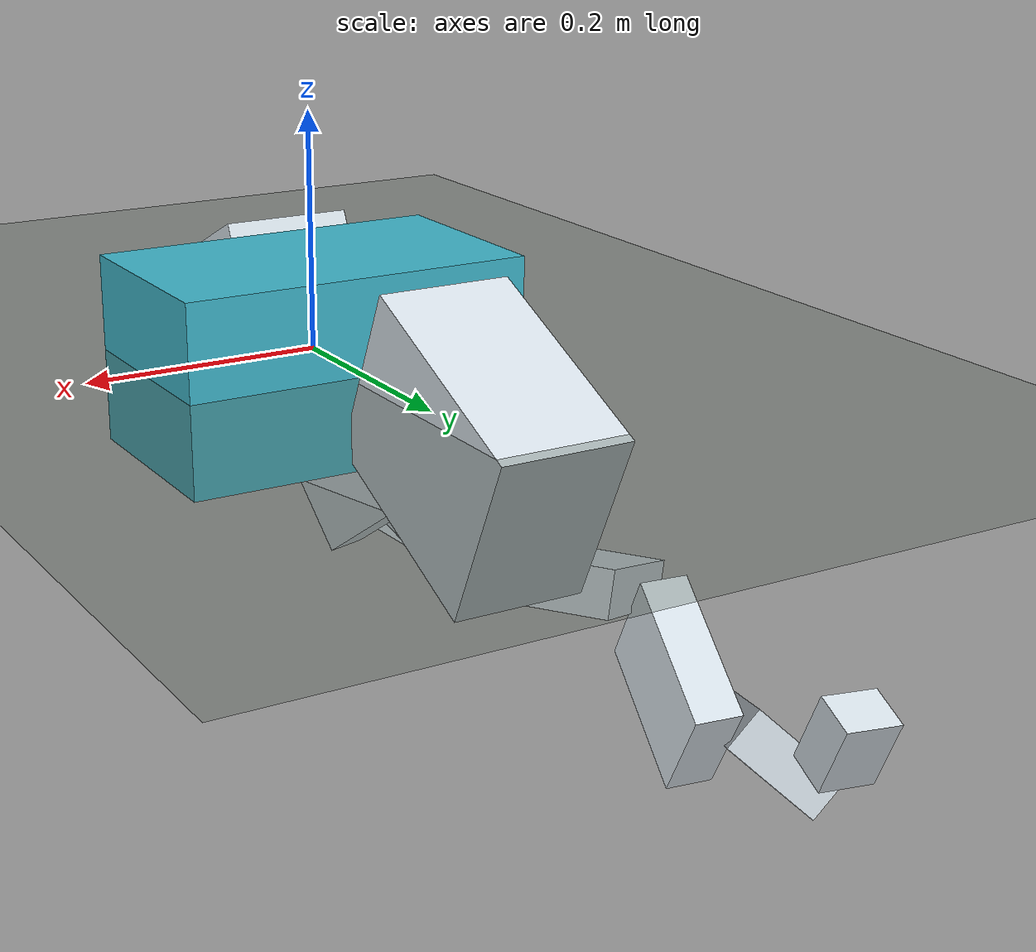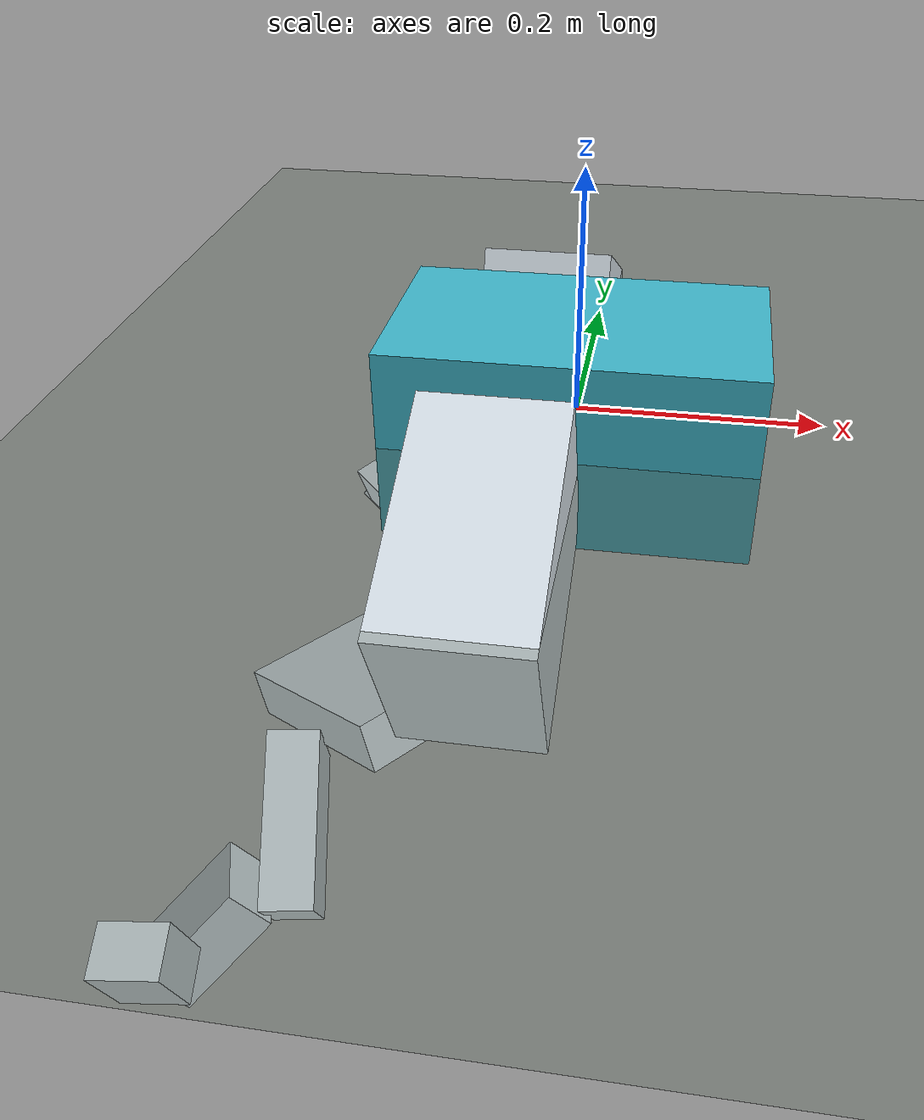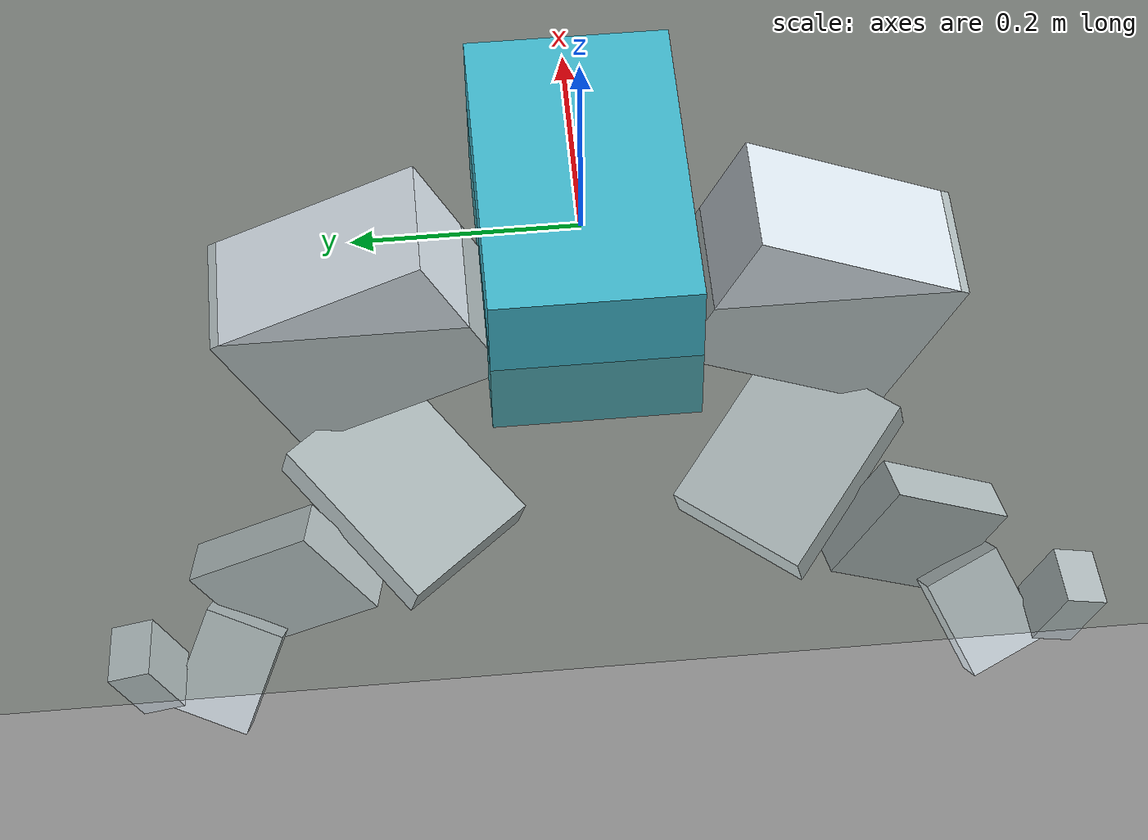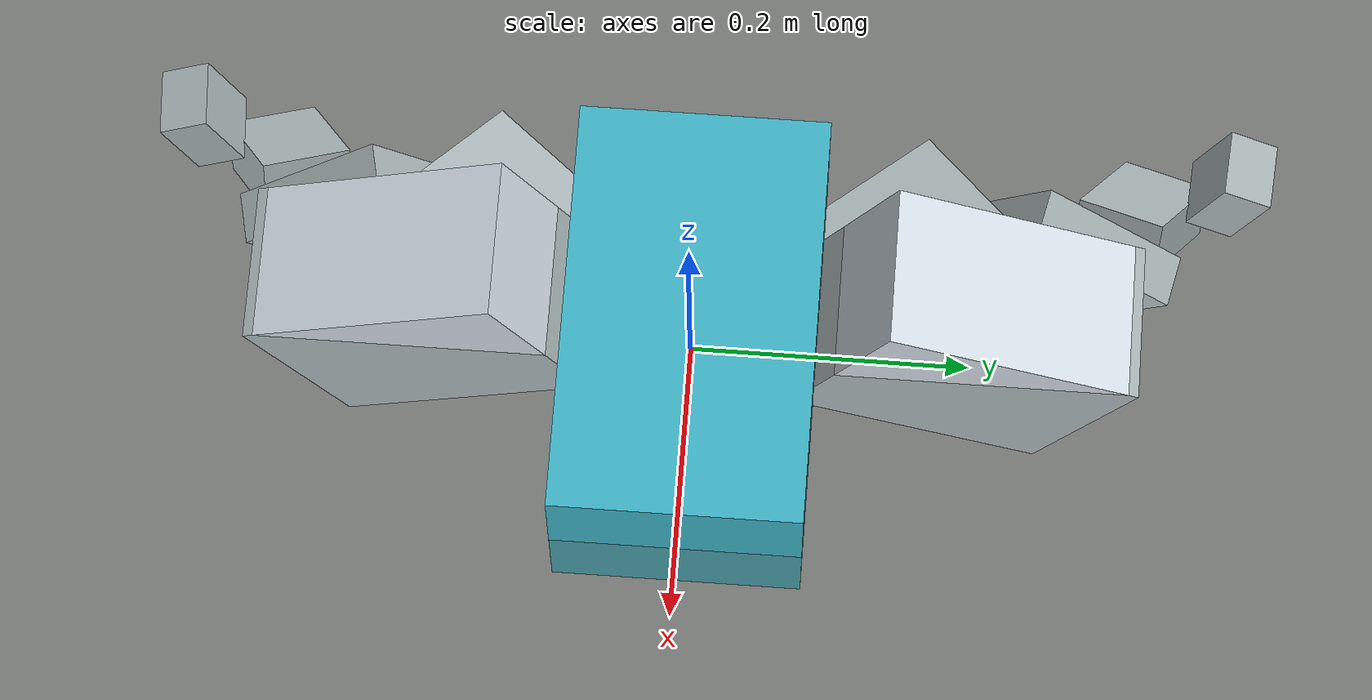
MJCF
<mujoco model="criatura">
  <compiler angle="degree" autolimits="true"/>
  <option timestep="0.002083" gravity="0 0 -9.81" integrator="implicitfast"/>
  <default>
    <geom type="box" density="300.0" rgba="0.85 0.89 0.92 1"/>
    <joint type="hinge"/>
    <motor ctrlrange="-1 1"/>
  </default>
  <worldbody>
    <geom name="suelo" type="plane" size="0 0 1" friction="1 0.005 0.0001" rgba="0.3 0.35 0.3 1"/>
    <body name="p0_n0" pos="0.00000 0.00000 0.00000" quat="1.000000 0.000000 0.000000 0.000000">
      <freejoint name="raiz"/>
      <geom name="g_p0_n0" size="0.15000 0.09000 0.08000" rgba="0.25 0.72 0.8 1"/>
      <body name="p1_n1" pos="-0.04500 -0.19876 -0.03471" quat="0.596368 -0.379928 0.596368 -0.379928">
        <joint name="p1_n1_j0" axis="0.0000 -1.0000 0.0000" pos="-0.12000 0 0" range="-48.59 48.59" damping="0.2739"/>
        <joint name="p1_n1_j1" axis="0.0000 0.0000 1.0000" pos="-0.12000 0 0" range="-48.59 48.59" damping="0.2739"/>
        <geom name="g_p1_n1" size="0.10000 0.08000 0.05706"/>
        <body name="p2_n2" pos="0.03320 0.13730 -0.09420" quat="-0.069109 -0.532061 -0.590361 0.603000">
          <joint name="p2_n2_j0" axis="0.0000 -1.0000 0.0000" pos="-0.10517 0 0" range="-47.06 47.06" damping="0.0778"/>
          <joint name="p2_n2_j1" axis="0.0000 0.0000 1.0000" pos="-0.10517 0 0" range="-47.06 47.06" damping="0.0778"/>
          <geom name="g_p2_n2" size="0.08517 0.06481 0.02000"/>
          <body name="p3_n3" pos="-0.01751 0.11147 -0.06702" quat="-0.069109 -0.532061 -0.590361 0.603000">
            <joint name="p3_n3_j0" axis="0.0000 -1.0000 0.0000" pos="-0.08563 0 0" range="-58.03 58.03" damping="0.0630"/>
            <joint name="p3_n3_j1" axis="0.0000 0.0000 1.0000" pos="-0.08563 0 0" range="-58.03 58.03" damping="0.0630"/>
            <geom name="g_p3_n3" size="0.06563 0.05250 0.02000"/>
            <body name="p4_n4" pos="0.06883 0.02216 -0.06476" quat="0.879286 -0.185934 0.318321 0.301590">
              <joint name="p4_n4_j0" axis="0.0000 1.0000 0.0000" pos="-0.06661 0 0" range="-47.06 47.06" damping="0.0426"/>
              <joint name="p4_n4_j1" axis="0.0000 0.0000 1.0000" pos="-0.06661 0 0" range="-47.06 47.06" damping="0.0426"/>
              <geom name="g_p4_n4" size="0.04661 0.03547 0.02000"/>
              <body name="p5_n5" pos="0.01381 -0.06431 -0.04464" quat="0.069109 -0.532061 0.590361 0.603000">
                <joint name="p5_n5_j0" axis="1.0000 0.0000 0.0000" pos="-0.05293 0 0" range="-58.03 58.03" damping="0.0316"/>
                <joint name="p5_n5_j1" axis="0.0000 0.0000 1.0000" pos="-0.05293 0 0" range="-58.03 58.03" damping="0.0316"/>
                <geom name="g_p5_n5" size="0.03293 0.02634 0.02000"/>
              </body>
            </body>
          </body>
        </body>
      </body>
      <body name="p6_n1" pos="-0.04500 0.19876 -0.03471" quat="0.596368 0.379928 0.596368 0.379928">
        <joint name="p6_n1_j0" axis="0.0000 1.0000 0.0000" pos="-0.12000 0 0" range="-48.59 48.59" damping="0.2739"/>
        <joint name="p6_n1_j1" axis="0.0000 0.0000 1.0000" pos="-0.12000 0 0" range="-48.59 48.59" damping="0.2739"/>
        <geom name="g_p6_n1" size="0.10000 0.08000 0.05706"/>
        <body name="p7_n2" pos="0.03320 -0.13730 -0.09420" quat="0.069109 -0.532061 0.590361 0.603000">
          <joint name="p7_n2_j0" axis="0.0000 1.0000 0.0000" pos="-0.10517 0 0" range="-47.06 47.06" damping="0.0778"/>
          <joint name="p7_n2_j1" axis="0.0000 0.0000 1.0000" pos="-0.10517 0 0" range="-47.06 47.06" damping="0.0778"/>
          <geom name="g_p7_n2" size="0.08517 0.06481 0.02000"/>
          <body name="p8_n3" pos="-0.01751 -0.11147 -0.06702" quat="0.069109 -0.532061 0.590361 0.603000">
            <joint name="p8_n3_j0" axis="0.0000 1.0000 0.0000" pos="-0.08563 0 0" range="-58.03 58.03" damping="0.0630"/>
            <joint name="p8_n3_j1" axis="0.0000 0.0000 1.0000" pos="-0.08563 0 0" range="-58.03 58.03" damping="0.0630"/>
            <geom name="g_p8_n3" size="0.06563 0.05250 0.02000"/>
            <body name="p9_n4" pos="0.06883 -0.02216 -0.06476" quat="0.879286 0.185934 0.318321 -0.301590">
              <joint name="p9_n4_j0" axis="0.0000 -1.0000 0.0000" pos="-0.06661 0 0" range="-47.06 47.06" damping="0.0426"/>
              <joint name="p9_n4_j1" axis="0.0000 0.0000 1.0000" pos="-0.06661 0 0" range="-47.06 47.06" damping="0.0426"/>
              <geom name="g_p9_n4" size="0.04661 0.03547 0.02000"/>
              <body name="p10_n5" pos="0.01381 0.06431 -0.04464" quat="-0.069109 -0.532061 -0.590361 0.603000">
                <joint name="p10_n5_j0" axis="1.0000 0.0000 0.0000" pos="-0.05293 0 0" range="-58.03 58.03" damping="0.0316"/>
                <joint name="p10_n5_j1" axis="0.0000 0.0000 1.0000" pos="-0.05293 0 0" range="-58.03 58.03" damping="0.0316"/>
                <geom name="g_p10_n5" size="0.03293 0.02634 0.02000"/>
              </body>
            </body>
          </body>
        </body>
      </body>
    </body>
  </worldbody>
  <actuator>
    <motor name="m_p1_n1_j0" joint="p1_n1_j0" gear="-5.4778"/>
    <motor name="m_p1_n1_j1" joint="p1_n1_j1" gear="-5.4778"/>
    <motor name="m_p2_n2_j0" joint="p2_n2_j0" gear="-1.5554"/>
    <motor name="m_p2_n2_j1" joint="p2_n2_j1" gear="-1.5554"/>
    <motor name="m_p3_n3_j0" joint="p3_n3_j0" gear="-1.2601"/>
    <motor name="m_p3_n3_j1" joint="p3_n3_j1" gear="-1.2601"/>
    <motor name="m_p4_n4_j0" joint="p4_n4_j0" gear="0.8512"/>
    <motor name="m_p4_n4_j1" joint="p4_n4_j1" gear="0.8512"/>
    <motor name="m_p5_n5_j0" joint="p5_n5_j0" gear="0.6323"/>
    <motor name="m_p5_n5_j1" joint="p5_n5_j1" gear="0.6323"/>
    <motor name="m_p6_n1_j0" joint="p6_n1_j0" gear="5.4778"/>
    <motor name="m_p6_n1_j1" joint="p6_n1_j1" gear="5.4778"/>
    <motor name="m_p7_n2_j0" joint="p7_n2_j0" gear="1.5554"/>
    <motor name="m_p7_n2_j1" joint="p7_n2_j1" gear="1.5554"/>
    <motor name="m_p8_n3_j0" joint="p8_n3_j0" gear="1.2601"/>
    <motor name="m_p8_n3_j1" joint="p8_n3_j1" gear="1.2601"/>
    <motor name="m_p9_n4_j0" joint="p9_n4_j0" gear="-0.8512"/>
    <motor name="m_p9_n4_j1" joint="p9_n4_j1" gear="-0.8512"/>
    <motor name="m_p10_n5_j0" joint="p10_n5_j0" gear="-0.6323"/>
    <motor name="m_p10_n5_j1" joint="p10_n5_j1" gear="-0.6323"/>
  </actuator>
</mujoco>
